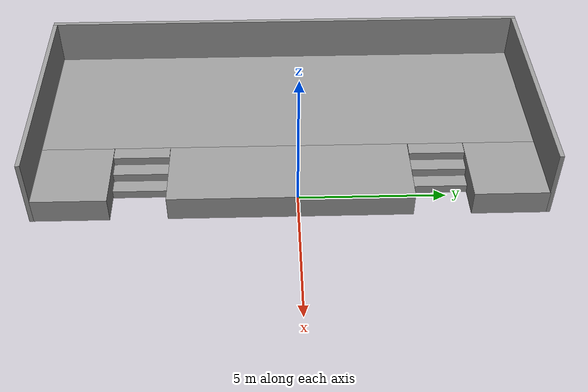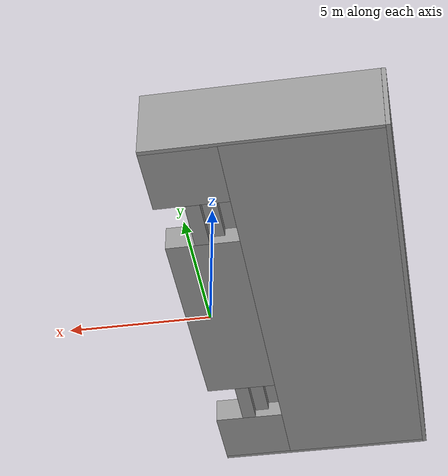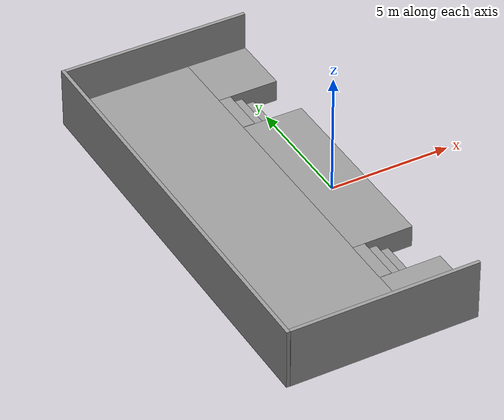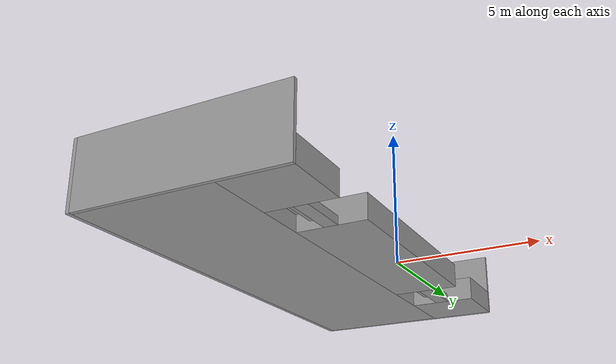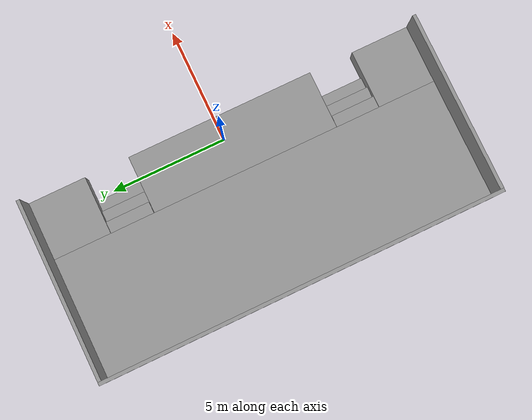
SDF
<?xml version='1.0'?>
<sdf version='1.7'>
  <model name='big_lab'>
    <pose>-3.0385 -0.260713 0 0 -0 0</pose>
    <link name='Stairs_1'>
      <visual name='Stairs_1_Visual_0'>
        <pose>2.63489 -5.02757 0.15 0 -0 -1.5708</pose>
        <geometry>
          <box>
            <size>1.9 0.5 0.3</size>
          </box>
        </geometry>
        <material>
          <script>
            <uri>file://media/materials/scripts/gazebo.material</uri>
            <name>Gazebo/Grey</name>
          </script>
          <ambient>1 1 1 1</ambient>
        </material>
        <meta>
          <layer>0</layer>
        </meta>
      </visual>
      <collision name='Stairs_1_Collision_0'>
        <geometry>
          <box>
            <size>1.9 0.5 0.3</size>
          </box>
        </geometry>
        <pose>2.63489 -5.02757 0.15 0 -0 -1.5708</pose>
      </collision>
      <visual name='Stairs_1_Visual_1'>
        <pose>2.13489 -5.02757 0.45 0 -0 -1.5708</pose>
        <geometry>
          <box>
            <size>1.9 0.5 0.3</size>
          </box>
        </geometry>
        <material>
          <script>
            <uri>file://media/materials/scripts/gazebo.material</uri>
            <name>Gazebo/Grey</name>
          </script>
          <ambient>1 1 1 1</ambient>
        </material>
        <meta>
          <layer>0</layer>
        </meta>
      </visual>
      <collision name='Stairs_1_Collision_1'>
        <geometry>
          <box>
            <size>1.9 0.5 0.3</size>
          </box>
        </geometry>
        <pose>2.13489 -5.02757 0.45 0 -0 -1.5708</pose>
      </collision>
      <visual name='Stairs_1_Visual_2'>
        <pose>1.63488 -5.02757 0.75 0 -0 -1.5708</pose>
        <geometry>
          <box>
            <size>1.9 0.5 0.3</size>
          </box>
        </geometry>
        <material>
          <script>
            <uri>file://media/materials/scripts/gazebo.material</uri>
            <name>Gazebo/Grey</name>
          </script>
          <ambient>1 1 1 1</ambient>
        </material>
        <meta>
          <layer>0</layer>
        </meta>
      </visual>
      <collision name='Stairs_1_Collision_2'>
        <geometry>
          <box>
            <size>1.9 0.5 0.3</size>
          </box>
        </geometry>
        <pose>1.63488 -5.02757 0.75 0 -0 -1.5708</pose>
      </collision>
    </link>
    <link name='Stairs_3'>
      <visual name='Stairs_3_Visual_0'>
        <pose>2.64253 5.0403 0.15 0 -0 -1.5708</pose>
        <geometry>
          <box>
            <size>1.9 0.5 0.3</size>
          </box>
        </geometry>
        <material>
          <script>
            <uri>file://media/materials/scripts/gazebo.material</uri>
            <name>Gazebo/Grey</name>
          </script>
          <ambient>1 1 1 1</ambient>
        </material>
        <meta>
          <layer>0</layer>
        </meta>
      </visual>
      <collision name='Stairs_3_Collision_0'>
        <geometry>
          <box>
            <size>1.9 0.5 0.3</size>
          </box>
        </geometry>
        <pose>2.64253 5.0403 0.15 0 -0 -1.5708</pose>
      </collision>
      <visual name='Stairs_3_Visual_1'>
        <pose>2.14253 5.0403 0.45 0 -0 -1.5708</pose>
        <geometry>
          <box>
            <size>1.9 0.5 0.3</size>
          </box>
        </geometry>
        <material>
          <script>
            <uri>file://media/materials/scripts/gazebo.material</uri>
            <name>Gazebo/Grey</name>
          </script>
          <ambient>1 1 1 1</ambient>
        </material>
        <meta>
          <layer>0</layer>
        </meta>
      </visual>
      <collision name='Stairs_3_Collision_1'>
        <geometry>
          <box>
            <size>1.9 0.5 0.3</size>
          </box>
        </geometry>
        <pose>2.14253 5.0403 0.45 0 -0 -1.5708</pose>
      </collision>
      <visual name='Stairs_3_Visual_2'>
        <pose>1.64253 5.0403 0.75 0 -0 -1.5708</pose>
        <geometry>
          <box>
            <size>1.9 0.5 0.3</size>
          </box>
        </geometry>
        <material>
          <script>
            <uri>file://media/materials/scripts/gazebo.material</uri>
            <name>Gazebo/Grey</name>
          </script>
          <ambient>1 1 1 1</ambient>
        </material>
        <meta>
          <layer>0</layer>
        </meta>
      </visual>
      <collision name='Stairs_3_Collision_2'>
        <geometry>
          <box>
            <size>1.9 0.5 0.3</size>
          </box>
        </geometry>
        <pose>1.64253 5.0403 0.75 0 -0 -1.5708</pose>
      </collision>
    </link>
    <link name='Wall_11'>
      <collision name='Wall_11_Collision'>
        <geometry>
          <box>
            <size>8.145 2.5 0.9</size>
          </box>
        </geometry>
        <pose>0 0 0.45 0 -0 0</pose>
      </collision>
      <visual name='Wall_11_Visual'>
        <pose>0 0 0.45 0 -0 0</pose>
        <geometry>
          <box>
            <size>8.145 2.5 0.9</size>
          </box>
        </geometry>
        <material>
          <script>
            <uri>file://media/materials/scripts/gazebo.material</uri>
            <name>Gazebo/Grey</name>
          </script>
          <ambient>1 1 1 1</ambient>
        </material>
        <meta>
          <layer>0</layer>
        </meta>
      </visual>
      <pose>2.6405 0.002213 0 0 -0 -1.5708</pose>
    </link>
    <link name='Wall_13'>
      <collision name='Wall_13_Collision'>
        <geometry>
          <box>
            <size>7.65 0.15 2.5</size>
          </box>
        </geometry>
        <pose>0 0 1.25 0 -0 0</pose>
      </collision>
      <visual name='Wall_13_Visual'>
        <pose>0 0 1.25 0 -0 0</pose>
        <geometry>
          <box>
            <size>7.65 0.15 2.5</size>
          </box>
        </geometry>
        <material>
          <script>
            <uri>file://media/materials/scripts/gazebo.material</uri>
            <name>Gazebo/Grey</name>
          </script>
          <ambient>1 1 1 1</ambient>
        </material>
        <meta>
          <layer>0</layer>
        </meta>
      </visual>
      <pose>0.072991 -8.5548 0 0 -0 0</pose>
    </link>
    <link name='Wall_15'>
      <collision name='Wall_15_Collision'>
        <geometry>
          <box>
            <size>7.65 0.15 2.5</size>
          </box>
        </geometry>
        <pose>0 0 1.25 0 -0 0</pose>
      </collision>
      <visual name='Wall_15_Visual'>
        <pose>0 0 1.25 0 -0 0</pose>
        <geometry>
          <box>
            <size>7.65 0.15 2.5</size>
          </box>
        </geometry>
        <material>
          <script>
            <uri>file://media/materials/scripts/gazebo.material</uri>
            <name>Gazebo/Grey</name>
          </script>
          <ambient>1 1 1 1</ambient>
        </material>
        <meta>
          <layer>0</layer>
        </meta>
      </visual>
      <pose>0.074651 8.55286 0 0 -0 0</pose>
    </link>
    <link name='Wall_17'>
      <collision name='Wall_17_Collision'>
        <geometry>
          <box>
            <size>17.25 0.15 2.5</size>
          </box>
        </geometry>
        <pose>0 0 1.25 0 -0 0</pose>
      </collision>
      <visual name='Wall_17_Visual'>
        <pose>0 0 1.25 0 -0 0</pose>
        <geometry>
          <box>
            <size>17.25 0.15 2.5</size>
          </box>
        </geometry>
        <material>
          <script>
            <uri>file://media/materials/scripts/gazebo.material</uri>
            <name>Gazebo/Grey</name>
          </script>
          <ambient>1 1 1 1</ambient>
        </material>
        <meta>
          <layer>0</layer>
        </meta>
      </visual>
      <pose>-3.8275 0.004796 0 0 -0 -1.5708</pose>
    </link>
    <link name='Wall_4'>
      <collision name='Wall_4_Collision'>
        <geometry>
          <box>
            <size>17 5.15 0.9</size>
          </box>
        </geometry>
        <pose>0 0 0.45 0 -0 0</pose>
      </collision>
      <visual name='Wall_4_Visual'>
        <pose>0 0 0.45 0 -0 0</pose>
        <geometry>
          <box>
            <size>17 5.15 0.9</size>
          </box>
        </geometry>
        <material>
          <script>
            <uri>file://media/materials/scripts/gazebo.material</uri>
            <name>Gazebo/Grey</name>
          </script>
          <ambient>1 1 1 1</ambient>
        </material>
        <meta>
          <layer>0</layer>
        </meta>
      </visual>
      <pose>-1.1775 0.006713 0 0 -0 -1.5708</pose>
    </link>
    <link name='Wall_6'>
      <collision name='Wall_6_Collision'>
        <geometry>
          <box>
            <size>2.51 2.5 0.9</size>
          </box>
        </geometry>
        <pose>0 0 0.45 0 -0 0</pose>
      </collision>
      <visual name='Wall_6_Visual'>
        <pose>0 0 0.45 0 -0 0</pose>
        <geometry>
          <box>
            <size>2.51 2.5 0.9</size>
          </box>
        </geometry>
        <material>
          <script>
            <uri>file://media/materials/scripts/gazebo.material</uri>
            <name>Gazebo/Grey</name>
          </script>
          <ambient>1 1 1 1</ambient>
        </material>
        <meta>
          <layer>0</layer>
        </meta>
      </visual>
      <pose>2.6445 -7.23829 0 0 -0 0</pose>
    </link>
    <link name='Wall_9'>
      <collision name='Wall_9_Collision'>
        <geometry>
          <box>
            <size>2.51 2.5 0.9</size>
          </box>
        </geometry>
        <pose>0 0 0.45 0 -0 0</pose>
      </collision>
      <visual name='Wall_9_Visual'>
        <pose>0 0 0.45 0 -0 0</pose>
        <geometry>
          <box>
            <size>2.51 2.5 0.9</size>
          </box>
        </geometry>
        <material>
          <script>
            <uri>file://media/materials/scripts/gazebo.material</uri>
            <name>Gazebo/Grey</name>
          </script>
          <ambient>1 1 1 1</ambient>
        </material>
        <meta>
          <layer>0</layer>
        </meta>
      </visual>
      <pose>2.6475 7.24871 0 0 -0 3.14159</pose>
    </link>
    <static>1</static>
  </model>
</sdf>
